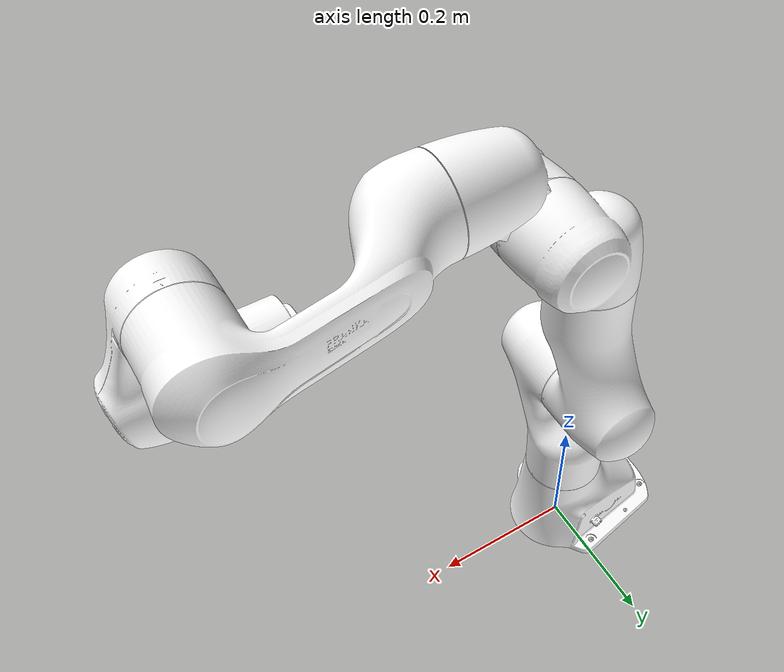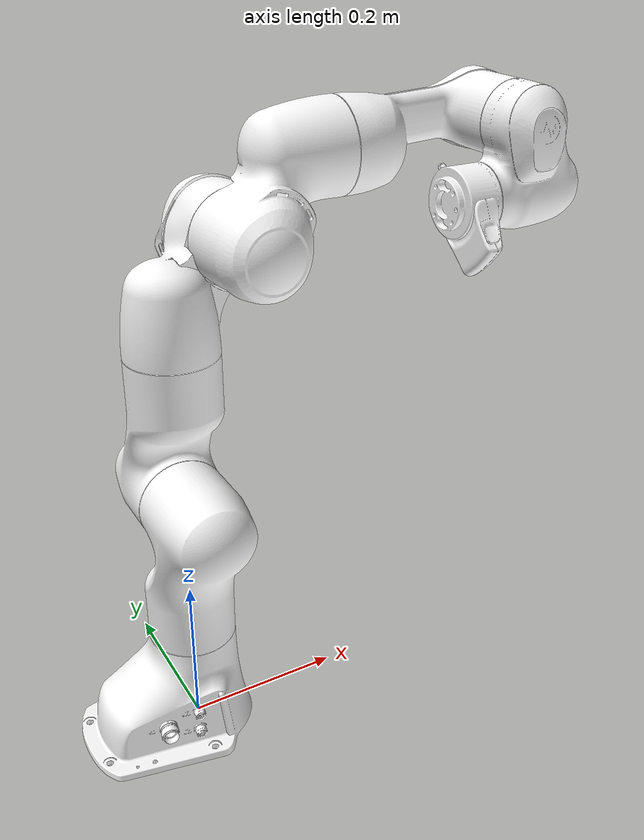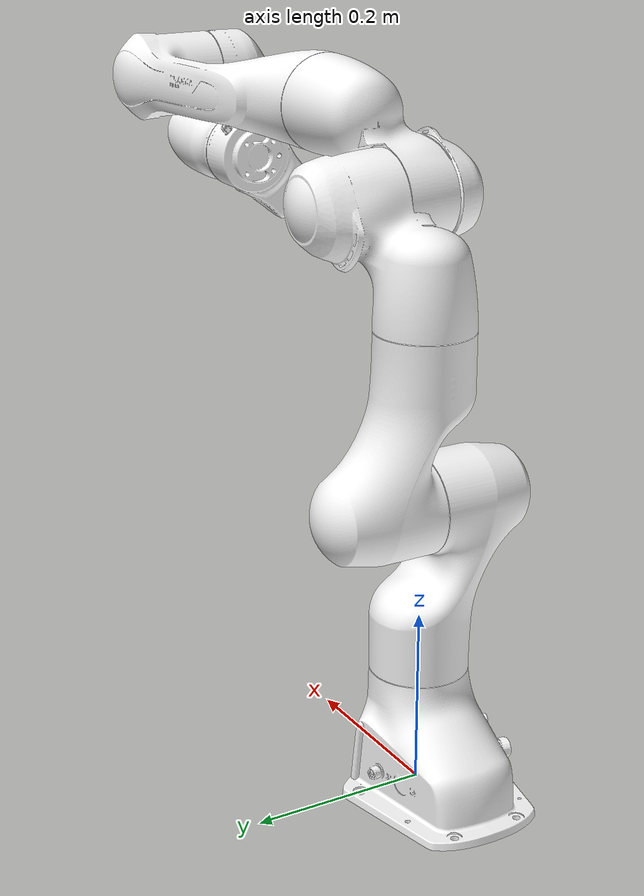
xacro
<?xml version="1.0" encoding="utf-8"?>
<robot xmlns:xacro="http://www.ros.org/wiki/xacro" name="panda">

  <!-- robot name -->
  <xacro:arg name="robot_name" default="panda" />

  <!-- load arm + hand -->
  <xacro:include filename="$(find franka_description)/robots/panda_arm.xacro" />

  <!-- load gazebo + transmission files -->
  <xacro:include filename="$(find franka_description)/robots/panda.gazebo.xacro" />
  <xacro:include filename="$(find franka_description)/robots/panda.transmission.xacro" />

  <!-- spawn robot -->
  <xacro:panda_arm />
  <xacro:panda_gazebo robot_name="$(arg robot_name)" />
  <xacro:panda_transmission robot_name="$(arg robot_name)" />

</robot>

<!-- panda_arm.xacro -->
<robot xmlns:xacro="http://www.ros.org/wiki/xacro" name="panda">

  <!--: Minimum safety distance [m] by which the collision volumes are expanded and which is enforced during robot motions -->
  <!-- arm_id: Namespace of the panda arm. Serves to differentiate between arms in case of multiple instances. -->

  <xacro:macro name="panda_arm" params="arm_id:='panda' package_name:='franka_description' xyz:='0 0 0' rpy:='0 0 0' joint_damping='1.0'">

    <!-- fix the robot to the Gazebo world coordinate system  -->

    <link name="world" />

    <joint name="robot_to_world" type="fixed">
      <parent link="world" />
      <child link="${arm_id}_link0" />
      <origin xyz="0.0 0.0 0.0" rpy="0.0 0.0 0.0" />
      <dynamics damping="${joint_damping}"/>
    </joint>

    <!-- link/joint 0 -->

    <link name="${arm_id}_link0">

      <inertial>
        <mass value="1.937868" />
        <origin xyz="-0.025566 -2.88e-05 0.057332" rpy="0 0 0" />
        <inertia ixx="1" ixy="0" ixz="0" iyy="1" iyz="0" izz="1" />
      </inertial>

      <visual>
        <origin xyz="${xyz}" rpy="${rpy}"/>
        <geometry>
          <mesh filename="package://${package_name}/meshes/visual/link0.dae"/>
        </geometry>
        <material name="">
          <color rgba="1 1 1 1"/>
        </material>
      </visual>

      <collision>
        <origin xyz="${xyz}" rpy="${rpy}"/>
        <geometry>
          <mesh filename="package://${package_name}/meshes/collision/link0.stl"/>
        </geometry>
      </collision>

    </link>

    <!-- link/joint 1 -->

    <link name="${arm_id}_link1">

      <inertial>
        <origin xyz="3.875e-03 2.081e-03 -0.1750" rpy="0 0 0"/>
        <mass value="4.970684"/>
        <inertia ixx="0.551121276649726" ixy="-9.891702555950000e-05" ixz="0.003401254912500" iyy="0.554308164573063" iyz="0.017358801154300" izz="0.009020836222789"/>
      </inertial>

      <visual>
        <origin xyz="${xyz}" rpy="${rpy}"/>
        <geometry>
          <mesh filename="package://${package_name}/meshes/visual/link1.dae"/>
        </geometry>
        <material name="">
          <color rgba="1 1 1 1"/>
        </material>
      </visual>

      <collision>
        <origin xyz="${xyz}" rpy="${rpy}"/>
        <geometry>
          <mesh filename="package://${package_name}/meshes/collision/link1.stl"/>
        </geometry>
      </collision>

    </link>

    <joint name="${arm_id}_joint1" type="revolute">
      <safety_controller k_position="100.0" k_velocity="40.0" soft_lower_limit="-2.8973" soft_upper_limit="2.8973"/>
      <origin rpy="0 0 0" xyz="0 0 0.333"/>
      <parent link="${arm_id}_link0"/>
      <child link="${arm_id}_link1"/>
      <axis xyz="0 0 1"/>
      <limit effort="87" lower="-2.8973" upper="2.8973" velocity="2.1750"/>
      <dynamics damping="${joint_damping}"/>
    </joint>

    <!-- link/joint 2 -->

    <link name="${arm_id}_link2">

      <inertial>
        <origin xyz="-3.141e-03 -2.872e-02 3.495e-03" rpy="0 0 0"/>
        <mass value="0.646926"/>
        <inertia ixx="0.007420488375978" ixy="-0.003866641116064" ixz="0.010246898178992" iyy="0.028095715287805" iyz="6.390638970536000e-04" izz="0.025455008098310"/>
      </inertial>

      <visual>
        <origin xyz="${xyz}" rpy="${rpy}"/>
        <geometry>
          <mesh filename="package://${package_name}/meshes/visual/link2.dae"/>
        </geometry>
        <material name="">
          <color rgba="1 1 1 1"/>
        </material>
      </visual>

      <collision>
        <origin xyz="${xyz}" rpy="${rpy}"/>
        <geometry>
          <mesh filename="package://${package_name}/meshes/collision/link2.stl"/>
        </geometry>
      </collision>

    </link>

    <joint name="${arm_id}_joint2" type="revolute">
      <safety_controller k_position="100.0" k_velocity="40.0" soft_lower_limit="-1.7628" soft_upper_limit="1.7628"/>
      <origin rpy="${-pi/2} 0 0" xyz="0 0 0"/>
      <parent link="${arm_id}_link1"/>
      <child link="${arm_id}_link2"/>
      <axis xyz="0 0 1"/>
      <limit effort="1000000000000" lower="-1.7628" upper="1.7628" velocity="1000000000000"/>
      <limit effort="87" lower="-1.7628" upper="1.7628" velocity="2.1750"/>
      <dynamics damping="${joint_damping}"/>
    </joint>

    <!-- link/joint 3 -->

    <link name="${arm_id}_link3">

      <inertial>
        <origin xyz="2.7518e-02 3.9252e-02 -6.6502e-02" rpy="0 0 0"/>
        <mass value="3.228604"/>
        <inertia ixx="0.017989073985929" ixy="-0.001273666859324" ixz="-0.017304351893438" iyy="0.019431618000394" iyz="-0.021232742878160" izz="0.003410797707480"/>
      </inertial>

      <visual>
        <origin xyz="${xyz}" rpy="${rpy}"/>
        <geometry>
          <mesh filename="package://${package_name}/meshes/visual/link3.dae"/>
        </geometry>
        <material name="">
          <color rgba="1 1 1 1"/>
        </material>
      </visual>

      <collision>
        <origin xyz="${xyz}" rpy="${rpy}"/>
        <geometry>
          <mesh filename="package://${package_name}/meshes/collision/link3.stl"/>
        </geometry>
      </collision>

    </link>

    <joint name="${arm_id}_joint3" type="revolute">
      <safety_controller k_position="100.0" k_velocity="40.0" soft_lower_limit="-2.8973" soft_upper_limit="2.8973"/>
      <origin rpy="${pi/2} 0 0" xyz="0 -0.316 0"/>
      <parent link="${arm_id}_link2"/>
      <child link="${arm_id}_link3"/>
      <axis xyz="0 0 1"/>
      <limit effort="87" lower="-2.8973" upper="2.8973" velocity="2.1750"/>
      <dynamics damping="${joint_damping}"/>
    </joint>

    <!-- link/joint 4 -->

    <link name="${arm_id}_link4">

      <inertial>
        <origin xyz="-5.317e-02 1.04419e-01 2.7454e-02" rpy="0 0 0"/>
        <mass value="3.587895"/>
        <inertia ixx="-0.015971270250860" ixy="-0.012123843173626" ixz="-0.006569355026276" iyy="0.006704569575549" iyz="0.018926487577369" izz="-0.020940149052540"/>
      </inertial>

      <visual>
        <origin xyz="${xyz}" rpy="${rpy}"/>
        <geometry>
          <mesh filename="package://${package_name}/meshes/visual/link4.dae"/>
        </geometry>
        <material name="">
          <color rgba="1 1 1 1"/>
        </material>
      </visual>

      <collision>
        <origin xyz="${xyz}" rpy="${rpy}"/>
        <geometry>
          <mesh filename="package://${package_name}/meshes/collision/link4.stl"/>
        </geometry>
      </collision>

    </link>

    <joint name="${arm_id}_joint4" type="revolute">
      <safety_controller k_position="100.0" k_velocity="40.0" soft_lower_limit="-3.0718" soft_upper_limit="-0.0698"/>
      <origin rpy="${pi/2} 0 0" xyz="0.0825 0 0"/>
      <parent link="${arm_id}_link3"/>
      <child link="${arm_id}_link4"/>
      <axis xyz="0 0 1"/>
      <limit effort="1000000000000" lower="-3.0718" upper="-0.0698" velocity="1000000000000"/>
      <limit effort="87" lower="-3.0718" upper="-0.0698" velocity="2.1750"/>
      <dynamics damping="${joint_damping}"/>
    </joint>

    <!-- link/joint 5 -->

    <link name="${arm_id}_link5">

      <inertial>
        <origin xyz="-1.1953e-02 4.1065e-02 -3.8437e-02" rpy="0 0 0"/>
        <mass value="1.225946"/>
        <inertia ixx="0.031670429041964" ixy="-0.002718755526673" ixz="-0.003473754482437" iyy="0.027487627674740" iyz="-0.001706052052098" izz="0.006384489237171"/>
      </inertial>

      <visual>
        <origin xyz="${xyz}" rpy="${rpy}"/>
        <geometry>
          <mesh filename="package://${package_name}/meshes/visual/link5.dae"/>
        </geometry>
        <material name="">
          <color rgba="1 1 1 1"/>
        </material>
      </visual>

      <collision>
        <origin xyz="${xyz}" rpy="${rpy}"/>
        <geometry>
          <mesh filename="package://${package_name}/meshes/collision/link5.stl"/>
        </geometry>
      </collision>

    </link>

    <joint name="${arm_id}_joint5" type="revolute">
      <safety_controller k_position="100.0" k_velocity="40.0" soft_lower_limit="-2.8973" soft_upper_limit="2.8973"/>
      <origin rpy="${-pi/2} 0 0" xyz="-0.0825 0.384 0"/>
      <parent link="${arm_id}_link4"/>
      <child link="${arm_id}_link5"/>
      <axis xyz="0 0 1"/>
      <limit effort="12" lower="-2.8973" upper="2.8973" velocity="2.6100"/>
      <dynamics damping="${joint_damping}"/>
    </joint>

    <!-- link/joint 6 -->

    <link name="${arm_id}_link6">

      <inertial>
        <origin xyz="6.0149e-02 -1.4117e-02 -1.0517e-02" rpy="0 0 0"/>
        <mass value="1.666555"/>
        <inertia ixx="0.001447539641829" ixy="-0.001306110902883" ixz="-0.002212241082781" iyy="-0.001859766133107" iyz="5.884309026853950e-04" izz="-9.285602302389487e-04"/>
      </inertial>

      <visual>
        <origin xyz="${xyz}" rpy="${rpy}"/>
        <geometry>
          <mesh filename="package://${package_name}/meshes/visual/link6.dae"/>
        </geometry>
        <material name="">
          <color rgba="1 1 1 1"/>
        </material>
      </visual>

      <collision>
        <origin xyz="${xyz}" rpy="${rpy}"/>
        <geometry>
          <mesh filename="package://${package_name}/meshes/collision/link6.stl"/>
        </geometry>
      </collision>

    </link>

    <joint name="${arm_id}_joint6" type="revolute">
      <safety_controller k_position="100.0" k_velocity="40.0" soft_lower_limit="-0.0175" soft_upper_limit="3.7525"/>
      <origin rpy="${pi/2} 0 0" xyz="0 0 0"/>
      <parent link="${arm_id}_link5"/>
      <child link="${arm_id}_link6"/>
      <axis xyz="0 0 1"/>
      <limit effort="1000000000000" lower="-0.0175" upper="3.7525" velocity="1000000000000"/>
      <limit effort="12" lower="-0.0175" upper="3.7525" velocity="2.6100"/>
      <dynamics damping="${joint_damping}"/>
    </joint>

    <!-- link/joint 7 -->

    <link name="${arm_id}_link7">

      <inertial>
        <origin xyz="1.0517e-02 -4.252e-03 6.1597e-02" rpy="0 0 0"/>
        <mass value="7.35522e-01"/>
        <inertia ixx="0.009711991609050" ixy="-4.608912816842480e-04" ixz="-7.195173382162220e-04" iyy="0.007154935387572" iyz="-9.336408935917680e-04" izz="0.004720348032639"/>
      </inertial>

      <visual>
        <origin xyz="${xyz}" rpy="${rpy}"/>
        <geometry>
          <mesh filename="package://${package_name}/meshes/visual/link7.dae"/>
        </geometry>
        <material name="">
          <color rgba="1 1 1 1"/>
        </material>
      </visual>

      <collision>
        <origin xyz="${xyz}" rpy="${rpy}"/>
        <geometry>
          <mesh filename="package://${package_name}/meshes/collision/link7.stl"/>
        </geometry>
      </collision>

    </link>

    <joint name="${arm_id}_joint7" type="revolute">
      <safety_controller k_position="100.0" k_velocity="40.0" soft_lower_limit="-2.8973" soft_upper_limit="2.8973"/>
      <origin rpy="${pi/2} 0 0" xyz="0.088 0 0"/>
      <parent link="${arm_id}_link6"/>
      <child link="${arm_id}_link7"/>
      <axis xyz="0 0 1"/>
      <limit effort="12" lower="-2.8973" upper="2.8973" velocity="2.6100"/>
      <dynamics damping="${joint_damping}"/>
    </joint>

    <!-- link/joint 8 -->

    <link name="${arm_id}_link8"/>

    <joint name="${arm_id}_joint8" type="fixed">
      <origin rpy="0 0 0" xyz="0 0 0.107"/>
      <parent link="${arm_id}_link7"/>
      <child link="${arm_id}_link8"/>
      <axis xyz="0 0 0"/>
    </joint>

  </xacro:macro>

</robot>
